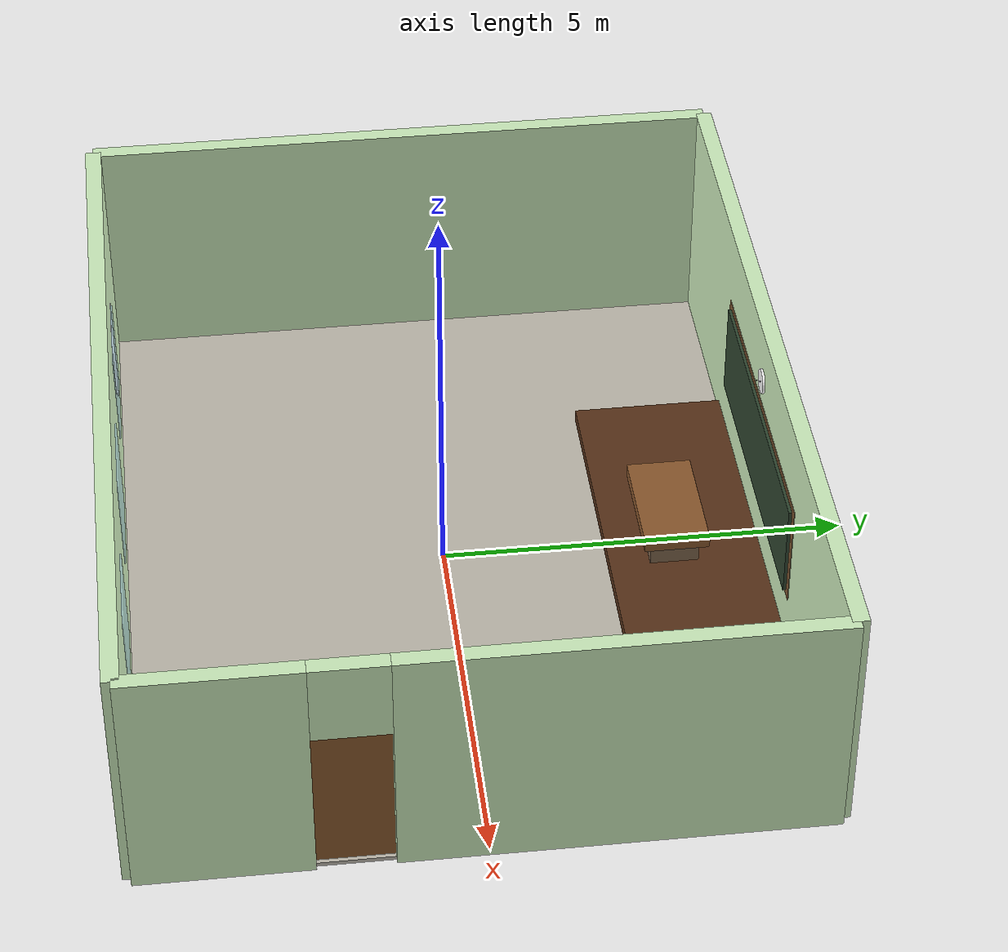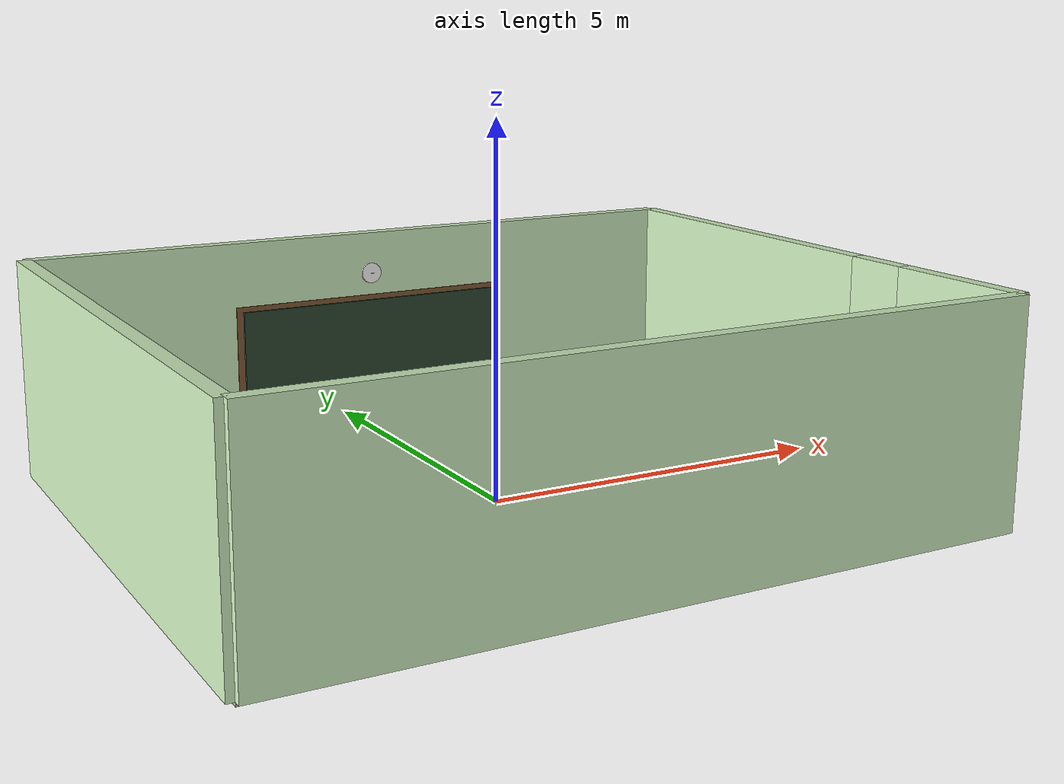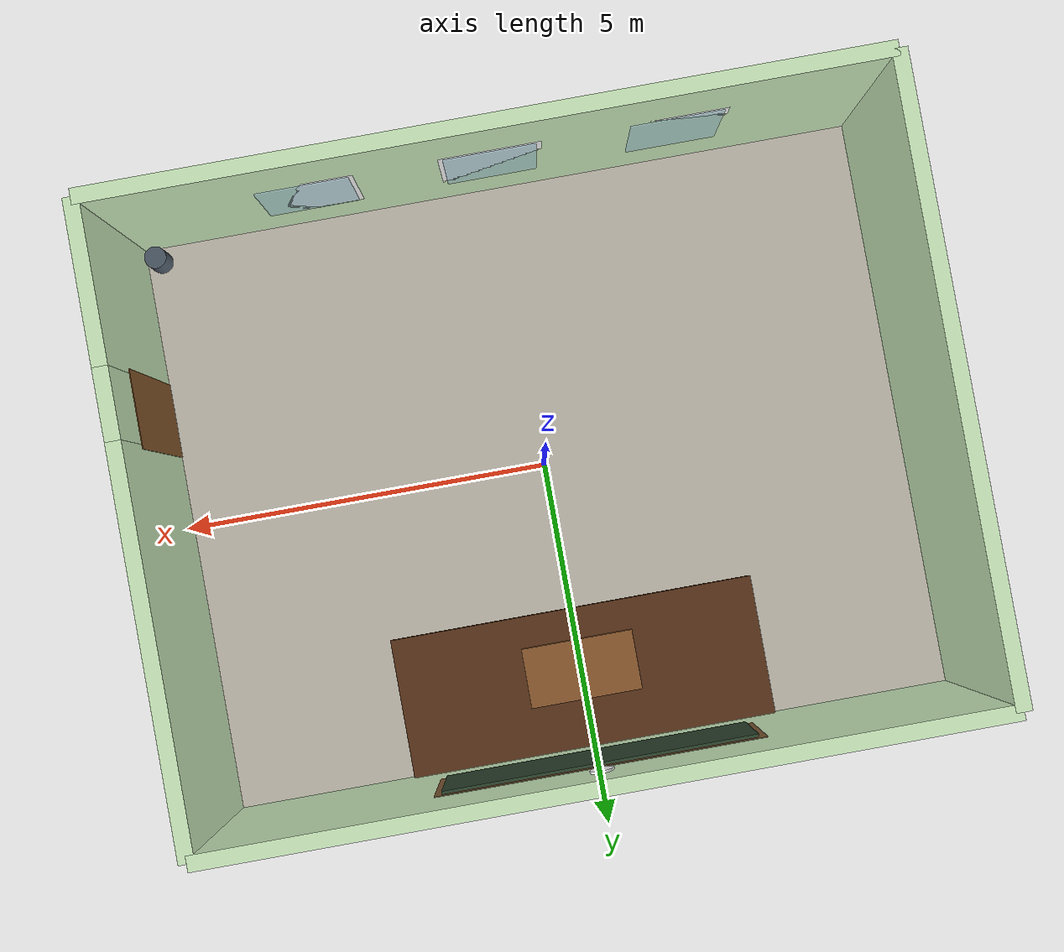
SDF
<sdf version="1.7">
 <world name="classroom_world">
  <physics type="ode">
   <max_step_size>0.001</max_step_size>
   <real_time_factor>1.0</real_time_factor>
   <real_time_update_rate>1000</real_time_update_rate>
   <ode>
    <solver><type>quick</type><iters>150</iters><sor>1.3</sor></solver>
    <constraints><cfm>0</cfm><erp>0.2</erp></constraints>
   </ode>
  </physics>
  <model name="floor">
   <static>true</static>
   <pose>0 0 -0.025 0 0 0</pose>
   <link name="link">
    <collision name="collision">
     <geometry><box><size>10 8 0.05</size></box></geometry>
     <surface>
      <friction><ode><mu>1.0</mu><mu2>1.0</mu2></ode></friction>
      <contact>
       <ode>
        <soft_cfm>0</soft_cfm>
        <soft_erp>0.2</soft_erp>
        <kp>1e5</kp>
        <kd>1</kd>
        <max_vel>0.01</max_vel>
        <min_depth>0.001</min_depth>
       </ode>
      </contact>
     </surface>
    </collision>
    <visual name="visual">
     <geometry><box><size>10 8 0.05</size></box></geometry>
     <material>
      <ambient>0.75 0.73 0.68 1</ambient>
      <diffuse>0.75 0.73 0.68 1</diffuse>
      <specular>0.05 0.05 0.05 0.05</specular>
     </material>
    </visual>
   </link>
  </model>
  <light name="sun" type="directional">
   <pose>0 0 10 0 0 0</pose>
   <diffuse>0.9 0.9 0.8 1</diffuse>
   <specular>0.1 0.1 0.1 1</specular>
   <attenuation>
    <range>1000</range>
    <constant>0.9</constant>
    <linear>0.01</linear>
    <quadratic>0.001</quadratic>
   </attenuation>
   <direction>-0.5 0.3 -0.9</direction>
  </light>
  <light name="ambient_fill" type="directional">
   <diffuse>0.5 0.5 0.55 1</diffuse>
   <specular>0 0 0 0</specular>
   <direction>0.5 0.5 -0.5</direction>
  </light>
  <light name="ceiling_light_center" type="point">
   <pose>0 0 2.9 0 0 0</pose>
   <diffuse>0.95 0.95 0.85 1</diffuse>
   <specular>0.05 0.05 0.05 1</specular>
   <attenuation>
    <range>8</range>
    <constant>0.5</constant>
    <linear>0.1</linear>
    <quadratic>0.02</quadratic>
   </attenuation>
  </light>
  <model name="wall_north">
   <static>true</static>
   <pose>0 4 1.5 0 0 0</pose>
   <link name="link">
    <collision name="collision"><geometry><box><size>10 0.2 3.0</size></box></geometry></collision>
    <visual name="visual">
     <geometry><box><size>10 0.2 3.0</size></box></geometry>
     <material>
      <ambient>0.816 0.941 0.753 1</ambient>
      <diffuse>0.816 0.941 0.753 1</diffuse>
      <specular>0 0 0 0</specular>
     </material>
    </visual>
   </link>
  </model>
  <model name="wall_south">
   <static>true</static>
   <pose>0 -4 1.5 0 0 0</pose>
   <link name="link">
    <collision name="collision"><geometry><box><size>10 0.2 3.0</size></box></geometry></collision>
    <visual name="visual">
     <geometry><box><size>10 0.2 3.0</size></box></geometry>
     <material>
      <ambient>0.816 0.941 0.753 1</ambient>
      <diffuse>0.816 0.941 0.753 1</diffuse>
      <specular>0 0 0 0</specular>
     </material>
    </visual>
   </link>
  </model>
  <model name="wall_east_lower">
   <static>true</static>
   <pose>5 -2.975 1.5 0 0 0</pose>
   <link name="link">
    <collision name="collision"><geometry><box><size>0.2 2.05 3.0</size></box></geometry></collision>
    <visual name="visual">
     <geometry><box><size>0.2 2.05 3.0</size></box></geometry>
     <material>
      <ambient>0.816 0.941 0.753 1</ambient>
      <diffuse>0.816 0.941 0.753 1</diffuse>
      <specular>0 0 0 0</specular>
     </material>
    </visual>
   </link>
  </model>
  <model name="wall_east_above_door">
   <static>true</static>
   <pose>5 -1.5 2.5 0 0 0</pose>
   <link name="link">
    <collision name="collision"><geometry><box><size>0.2 0.9 1.0</size></box></geometry></collision>
    <visual name="visual">
     <geometry><box><size>0.2 0.9 1.0</size></box></geometry>
     <material>
      <ambient>0.816 0.941 0.753 1</ambient>
      <diffuse>0.816 0.941 0.753 1</diffuse>
      <specular>0 0 0 0</specular>
     </material>
    </visual>
   </link>
  </model>
  <model name="wall_east_upper">
   <static>true</static>
   <pose>5 1.475 1.5 0 0 0</pose>
   <link name="link">
    <collision name="collision"><geometry><box><size>0.2 5.05 3.0</size></box></geometry></collision>
    <visual name="visual">
     <geometry><box><size>0.2 5.05 3.0</size></box></geometry>
     <material>
      <ambient>0.816 0.941 0.753 1</ambient>
      <diffuse>0.816 0.941 0.753 1</diffuse>
      <specular>0 0 0 0</specular>
     </material>
    </visual>
   </link>
  </model>
  <model name="wall_west">
   <static>true</static>
   <pose>-5 0 1.5 0 0 0</pose>
   <link name="link">
    <collision name="collision"><geometry><box><size>0.2 8 3.0</size></box></geometry></collision>
    <visual name="visual">
     <geometry><box><size>0.2 8 3.0</size></box></geometry>
     <material>
      <ambient>0.816 0.941 0.753 1</ambient>
      <diffuse>0.816 0.941 0.753 1</diffuse>
      <specular>0 0 0 0</specular>
     </material>
    </visual>
   </link>
  </model>
  <model name="window_1">
   <static>true</static>
   <pose>-2.4 -3.89 1.4 0 0 0</pose>
   <link name="link">
    <visual name="glass">
     <geometry><box><size>1.2 0.02 1.2</size></box></geometry>
     <material>
      <ambient>0.678 0.847 0.902 0.6</ambient>
      <diffuse>0.678 0.847 0.902 0.6</diffuse>
      <specular>0.3 0.3 0.3 0.3</specular>
     </material>
    </visual>
   </link>
  </model>
  <model name="window_1_frame">
   <static>true</static>
   <pose>-2.4 -3.92 1.4 0 0 0</pose>
   <link name="link">
    <visual name="frame">
     <geometry><box><size>1.32 0.04 1.32</size></box></geometry>
     <material>
      <ambient>1.0 1.0 1.0 1</ambient>
      <diffuse>1.0 1.0 1.0 1</diffuse>
      <specular>0.1 0.1 0.1 0.15</specular>
     </material>
    </visual>
   </link>
  </model>
  <model name="window_2">
   <static>true</static>
   <pose>0 -3.89 1.4 0 0 0</pose>
   <link name="link">
    <visual name="glass">
     <geometry><box><size>1.2 0.02 1.2</size></box></geometry>
     <material>
      <ambient>0.678 0.847 0.902 0.6</ambient>
      <diffuse>0.678 0.847 0.902 0.6</diffuse>
      <specular>0.3 0.3 0.3 0.3</specular>
     </material>
    </visual>
   </link>
  </model>
  <model name="window_2_frame">
   <static>true</static>
   <pose>0 -3.92 1.4 0 0 0</pose>
   <link name="link">
    <visual name="frame">
     <geometry><box><size>1.32 0.04 1.32</size></box></geometry>
     <material>
      <ambient>1.0 1.0 1.0 1</ambient>
      <diffuse>1.0 1.0 1.0 1</diffuse>
      <specular>0.1 0.1 0.1 0.15</specular>
     </material>
    </visual>
   </link>
  </model>
  <model name="window_3">
   <static>true</static>
   <pose>2.4 -3.89 1.4 0 0 0</pose>
   <link name="link">
    <visual name="glass">
     <geometry><box><size>1.2 0.02 1.2</size></box></geometry>
     <material>
      <ambient>0.678 0.847 0.902 0.6</ambient>
      <diffuse>0.678 0.847 0.902 0.6</diffuse>
      <specular>0.3 0.3 0.3 0.3</specular>
     </material>
    </visual>
   </link>
  </model>
  <model name="window_3_frame">
   <static>true</static>
   <pose>2.4 -3.92 1.4 0 0 0</pose>
   <link name="link">
    <visual name="frame">
     <geometry><box><size>1.32 0.04 1.32</size></box></geometry>
     <material>
      <ambient>1.0 1.0 1.0 1</ambient>
      <diffuse>1.0 1.0 1.0 1</diffuse>
      <specular>0.1 0.1 0.1 0.15</specular>
     </material>
    </visual>
   </link>
  </model>
  <model name="door_frame">
   <static>true</static>
   <pose>4.92 -1.5 1.0 0 0 0</pose>
   <link name="link">
    <collision name="frame_collision"><geometry><box><size>0.06 1.02 2.16</size></box></geometry></collision>
    <visual name="frame_visual">
     <geometry><box><size>0.06 1.02 2.16</size></box></geometry>
     <material>
      <ambient>0.545 0.353 0.169 1</ambient>
      <diffuse>0.545 0.353 0.169 1</diffuse>
      <specular>0 0 0 0</specular>
     </material>
    </visual>
   </link>
  </model>
  <model name="door_panel">
   <pose>4.92 -1.5 1.0 0 0 0</pose>
   <link name="link">
    <inertial>
     <mass>20</mass>
     <inertia><ixx>6.671</ixx><ixy>0</ixy><ixz>0</ixz><iyy>8.017</iyy><iyz>0</iyz><izz>1.354</izz></inertia>
    </inertial>
    <collision name="door_collision"><geometry><box><size>0.05 0.9 2.0</size></box></geometry></collision>
    <visual name="door_visual">
     <geometry><box><size>0.05 0.9 2.0</size></box></geometry>
     <material>
      <ambient>0.824 0.706 0.549 1</ambient>
      <diffuse>0.824 0.706 0.549 1</diffuse>
      <specular>0.05 0.05 0.05 0.05</specular>
     </material>
    </visual>
   </link>
  </model>
  <joint name="door_hinge" type="revolute">
   <parent>door_frame::link</parent>
   <child>door_panel::link</child>
   <pose>4.92 -1.95 1.0 0 0 0</pose>
   <axis>
    <xyz>0 0 1</xyz>
    <limit><lower>-1.57</lower><upper>0</upper><effort>100</effort></limit>
    <dynamics><damping>0.5</damping><friction>0.1</friction></dynamics>
   </axis>
  </joint>
  <model name="blackboard">
   <static>true</static>
   <pose>0 3.875 1.4 0 0 0</pose>
   <link name="link">
    <visual name="visual">
     <geometry><box><size>4.0 0.05 1.2</size></box></geometry>
     <material>
      <ambient>0.180 0.271 0.184 1</ambient>
      <diffuse>0.180 0.271 0.184 1</diffuse>
      <specular>0.05 0.05 0.05 0</specular>
     </material>
    </visual>
   </link>
  </model>
  <model name="blackboard_frame">
   <static>true</static>
   <pose>0 3.905 1.4 0 0 0</pose>
   <link name="link">
    <visual name="visual">
     <geometry><box><size>4.2 0.03 1.35</size></box></geometry>
     <material><ambient>0.5 0.35 0.2 1</ambient><diffuse>0.5 0.35 0.2 1</diffuse></material>
    </visual>
   </link>
  </model>
  <model name="wall_clock">
   <static>true</static>
   <pose>0 3.88 2.4 -1.57 0 0</pose>
   <link name="link">
    <collision name="collision">
     <geometry><cylinder><radius>0.15</radius><length>0.03</length></cylinder></geometry>
    </collision>
    <visual name="clock_body">
     <geometry><cylinder><radius>0.15</radius><length>0.03</length></cylinder></geometry>
     <material>
      <ambient>1.0 1.0 1.0 1</ambient>
      <diffuse>1.0 1.0 1.0 1</diffuse>
      <specular>0.2 0.2 0.2 0.2</specular>
     </material>
    </visual>
   </link>
  </model>
  <model name="wall_clock_hand_hour">
   <static>true</static>
   <pose>0 3.87 2.4 -1.57 0 -0.5</pose>
   <link name="link">
    <visual name="visual">
     <geometry><box><size>0.08 0.01 0.005</size></box></geometry>
     <material><ambient>0.1 0.1 0.1 1</ambient><diffuse>0.1 0.1 0.1 1</diffuse></material>
    </visual>
   </link>
  </model>
  <model name="wall_clock_hand_minute">
   <static>true</static>
   <pose>0 3.87 2.4 -1.57 0 1.2</pose>
   <link name="link">
    <visual name="visual">
     <geometry><box><size>0.12 0.008 0.005</size></box></geometry>
     <material><ambient>0.1 0.1 0.1 1</ambient><diffuse>0.1 0.1 0.1 1</diffuse></material>
    </visual>
   </link>
  </model>
  <model name="platform">
   <static>true</static>
   <pose>0 3.0 0.075 0 0 0</pose>
   <link name="link">
    <collision name="collision">
     <geometry><box><size>5.0 2.0 0.15</size></box></geometry>
     <surface><friction><ode><mu>1.0</mu><mu2>1.0</mu2></ode></friction></surface>
    </collision>
    <visual name="visual">
     <geometry><box><size>5.0 2.0 0.15</size></box></geometry>
     <material>
      <ambient>0.35 0.20 0.10 1</ambient>
      <diffuse>0.35 0.20 0.10 1</diffuse>
      <specular>0.05 0.05 0.05 0</specular>
     </material>
    </visual>
   </link>
  </model>
  <model name="podium">
   <static>true</static>
   <pose>0 2.8 0.55 0 0 0</pose>
   <link name="link">
    <collision name="collision"><geometry><box><size>1.5 0.8 0.15</size></box></geometry></collision>
    <visual name="top">
     <geometry><box><size>1.5 0.8 0.15</size></box></geometry>
     <material><ambient>0.55 0.35 0.18 1</ambient><diffuse>0.55 0.35 0.18 1</diffuse></material>
    </visual>
   </link>
  </model>
  <model name="podium_legs">
   <static>true</static>
   <pose>0 2.8 0.15 0 0 0</pose>
   <link name="link">
    <collision name="collision"><geometry><box><size>1.2 0.6 0.65</size></box></geometry></collision>
    <visual name="legs">
     <geometry><box><size>1.2 0.6 0.65</size></box></geometry>
     <material><ambient>0.5 0.4 0.3 1</ambient><diffuse>0.5 0.4 0.3 1</diffuse></material>
    </visual>
   </link>
  </model>
  <model name="trash_bin">
   <pose>4.7 -3.7 0.2 0 0 0</pose>
   <link name="link">
    <inertial>
     <mass>2.0</mass>
     <inertia><ixx>0.038</ixx><ixy>0</ixy><ixz>0</ixz><iyy>0.038</iyy><iyz>0</iyz><izz>0.023</izz></inertia>
    </inertial>
    <collision name="collision">
     <geometry><cylinder><radius>0.15</radius><length>0.4</length></cylinder></geometry>
    </collision>
    <visual name="visual">
     <geometry><cylinder><radius>0.15</radius><length>0.4</length></cylinder></geometry>
     <material>
      <ambient>0.3 0.35 0.4 1</ambient>
      <diffuse>0.3 0.35 0.4 1</diffuse>
      <specular>0.1 0.1 0.1 0.1</specular>
     </material>
    </visual>
   </link>
  </model>
 </world>
</sdf>
